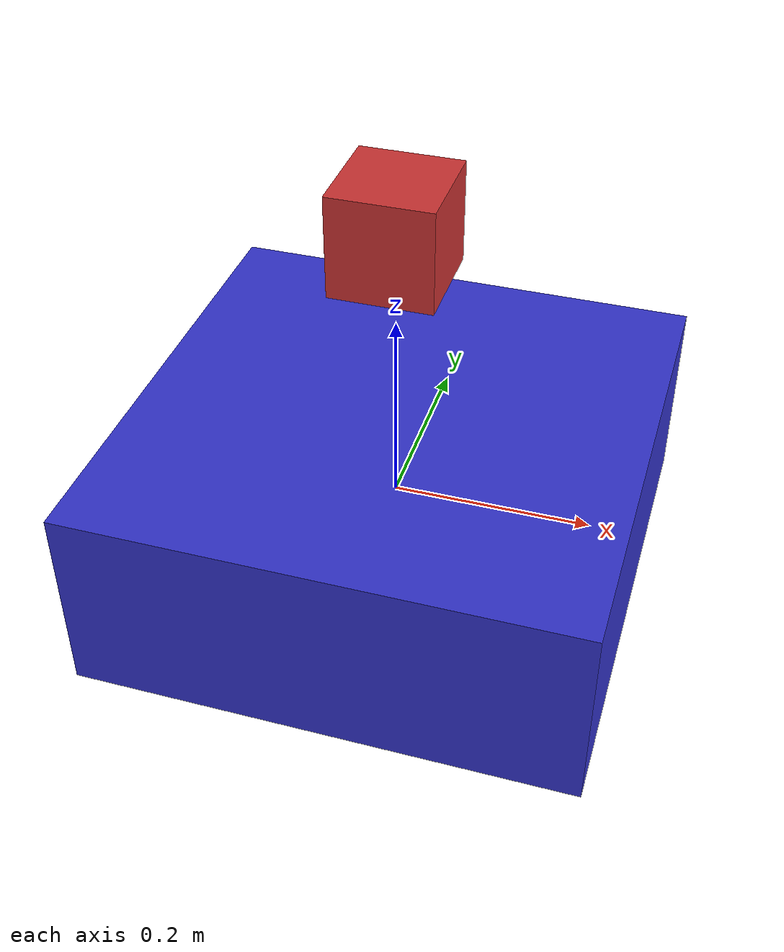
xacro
<?xml version="1.0"?>
<robot name="my_robot">

  <!-- Base del robot -->
  <link name="base_link">
    <inertial>
      <mass value="1.0"/>
      <inertia ixx="0.01" iyy="0.01" izz="0.01"
               ixy="0.0" ixz="0.0" iyz="0.0"/>
    </inertial>
    <visual>
      <geometry>
        <box size="0.5 0.5 0.2"/>
      </geometry>
      <material name="blue">
        <color rgba="0.2 0.2 0.8 1"/>
      </material>
    </visual>
    <collision>
      <geometry>
        <box size="0.5 0.5 0.2"/>
      </geometry>
    </collision>
  </link>

  <!-- Cámara -->
  <link name="camera_link">
    <inertial>
      <mass value="0.1"/>
      <inertia ixx="0.001" iyy="0.001" izz="0.001"
               ixy="0.0" ixz="0.0" iyz="0.0"/>
    </inertial>
    <visual>
      <geometry>
        <box size="0.1 0.1 0.1"/>
      </geometry>
      <material name="red">
        <color rgba="0.8 0.2 0.2 1"/>
      </material>
    </visual>
    <collision>
      <geometry>
        <box size="0.1 0.1 0.1"/>
      </geometry>
    </collision>
  </link>

  <!-- Unión fija entre base y cámara -->
  <joint name="camera_joint" type="fixed">
    <parent link="base_link"/>
    <child link="camera_link"/>
    <origin xyz="0 0 0.3"/>
  </joint>

  <!-- Sensor de cámara en Gazebo -->
  <gazebo reference="camera_link">
    <sensor type="camera" name="camera_sensor">
      <update_rate>30</update_rate>
      <camera name="head_camera">
        <horizontal_fov>1.047</horizontal_fov>
        <image>
          <width>640</width>
          <height>480</height>
          <format>R8G8B8</format>
        </image>
        <clip>
          <near>0.1</near>
          <far>100</far>
        </clip>
      </camera>
      <always_on>true</always_on>
      <visualize>true</visualize>
    </sensor>
  </gazebo>

</robot>
